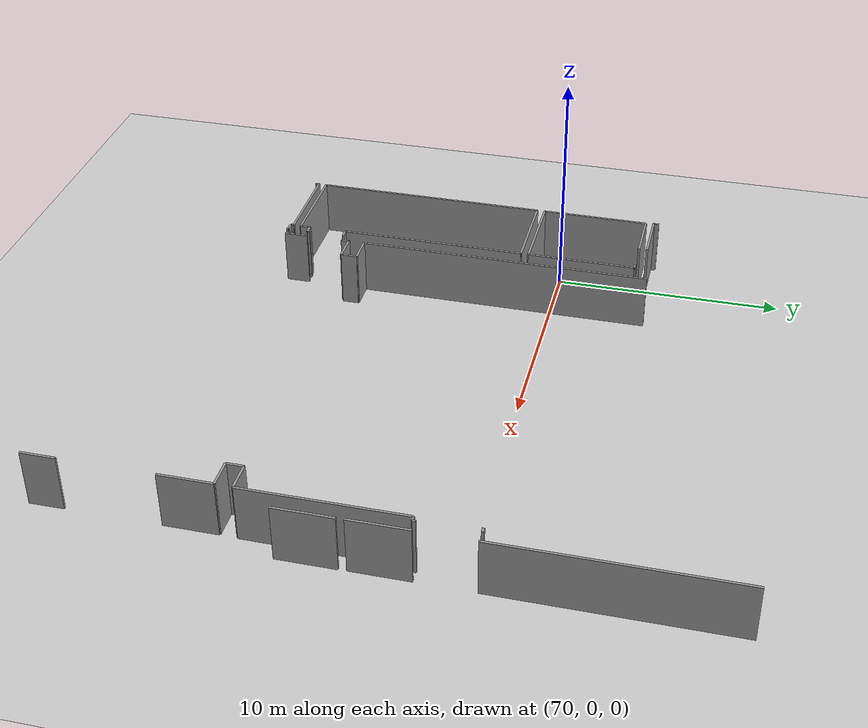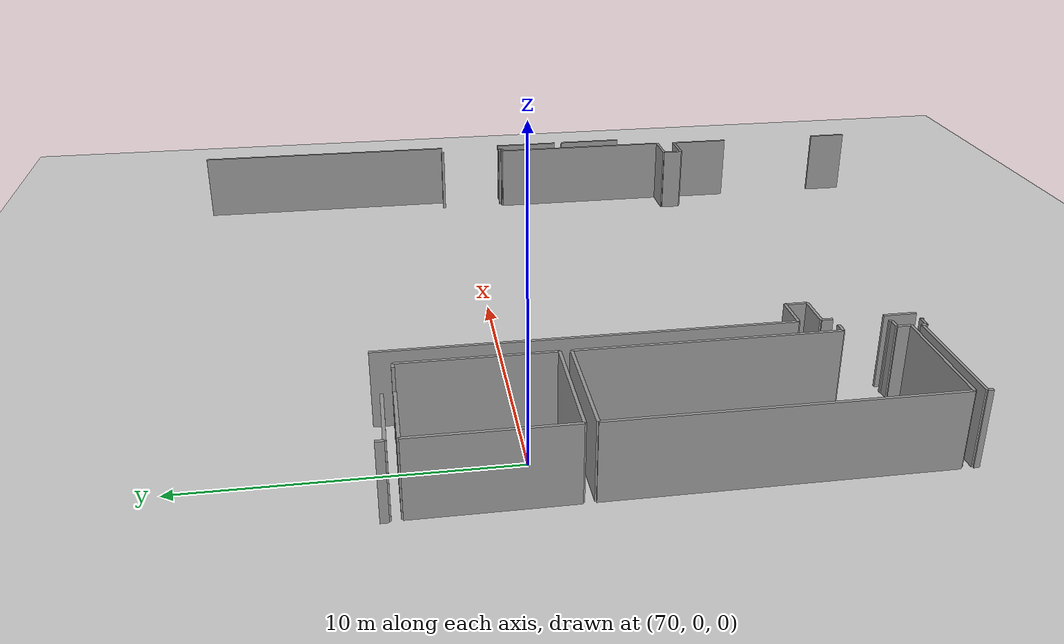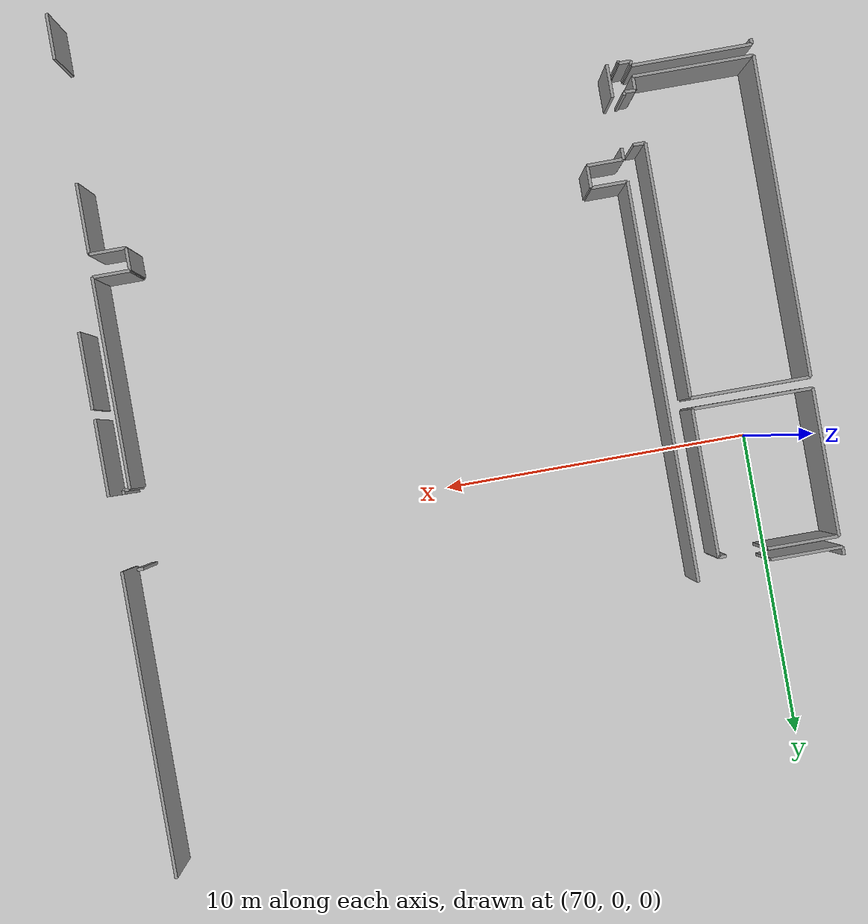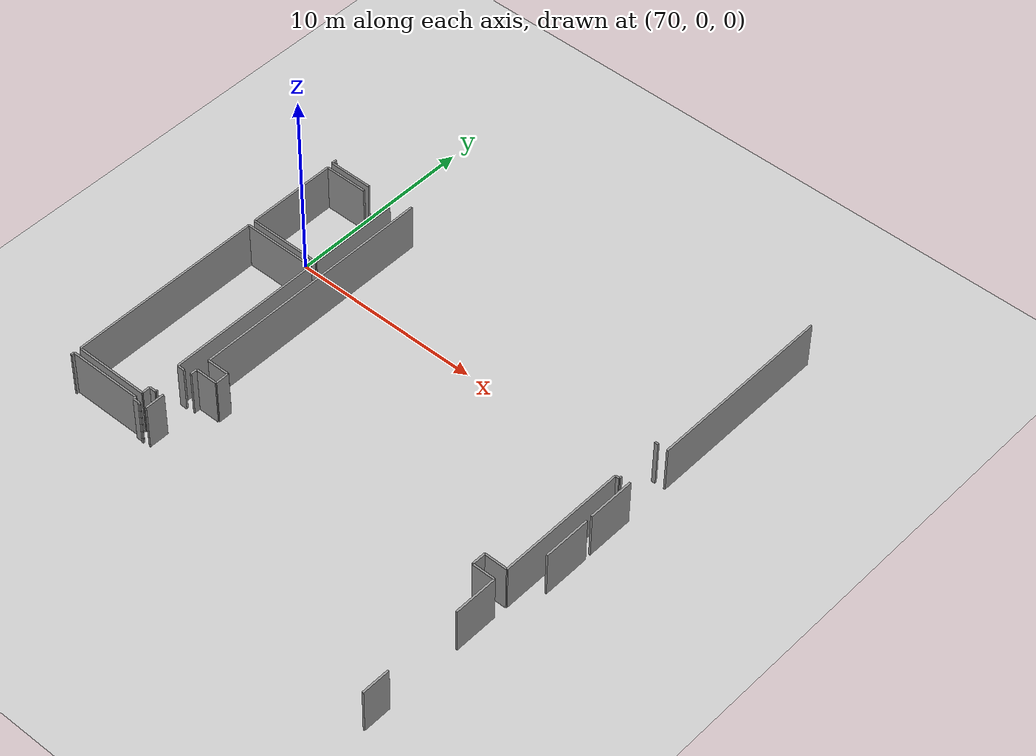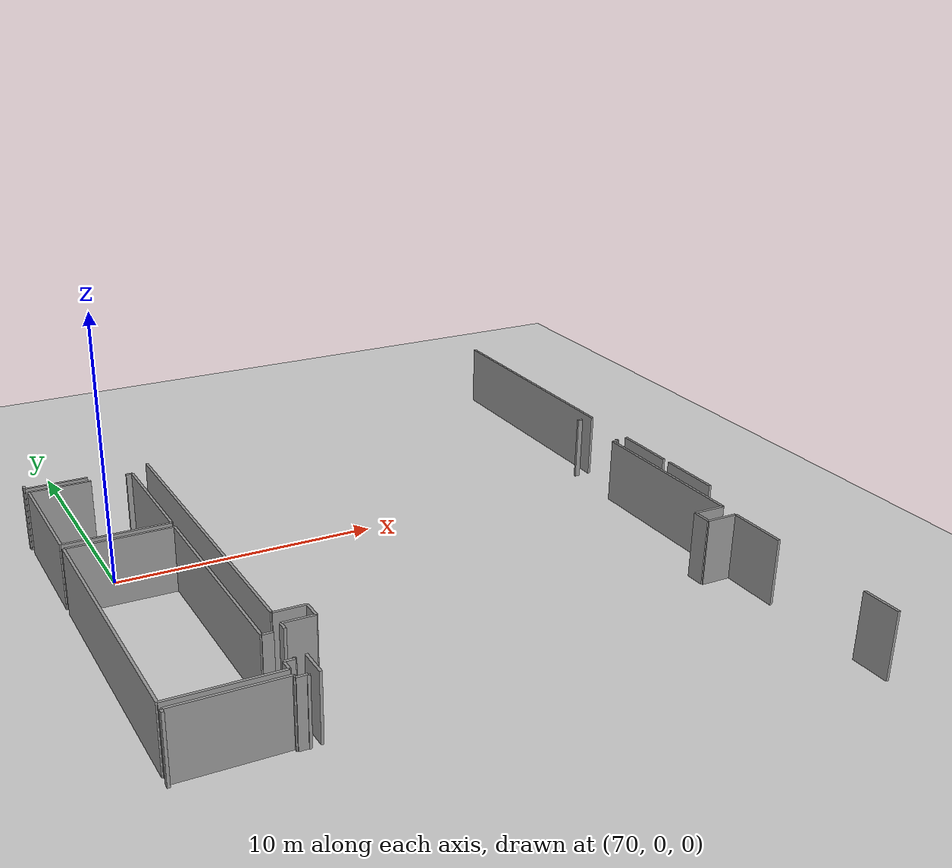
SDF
<sdf version="1.6">
 <world name="default">
  <model name="ground_plane">
   <static>1</static>
   <link name="link">
    <collision name="collision">
     <geometry><plane><normal>0 0 1</normal><size>100 100</size></plane></geometry>
     <surface><friction><ode><mu>100</mu><mu2>50</mu2></ode></friction></surface>
    </collision>
    <visual name="visual">
     <cast_shadows>0</cast_shadows>
     <geometry><plane><normal>0 0 1</normal><size>100 100</size></plane></geometry>
     <material>
      <script><uri>file://media/materials/scripts/gazebo.material</uri><name>Gazebo/Grey</name></script>
     </material>
    </visual>
   </link>
  </model>
  <model name="0510035519_A_40_1_102">
   <static>1</static>
   <link name="Wall_752">
    <collision name="Wall_752_Collision">
     <geometry><box><size>2.31211081459 0.1 2.5</size></box></geometry>
     <pose>1.15605540729 0 1.25 0 0 0</pose>
    </collision>
    <visual name="Wall_752_Visual">
     <pose>1.15605540729 0 1.25 0 0 0</pose>
     <geometry><box><size>2.31211081459 0.1 2.5</size></box></geometry>
     <material>
      <script><uri>file://media/materials/scripts/gazebo.material</uri><name>Gazebo/Grey</name></script>
      <ambient>1 1 1 1</ambient>
     </material>
    </visual>
    <pose>186.885754225 -64.7701105604 0 0 0 3.14159265359</pose>
   </link>
   <link name="Wall_753">
    <collision name="Wall_753_Collision">
     <geometry><box><size>0.252636929724 0.1 2.5</size></box></geometry>
     <pose>0.126318464862 0 1.25 0 0 0</pose>
    </collision>
    <visual name="Wall_753_Visual">
     <pose>0.126318464862 0 1.25 0 0 0</pose>
     <geometry><box><size>0.252636929724 0.1 2.5</size></box></geometry>
     <material>
      <script><uri>file://media/materials/scripts/gazebo.material</uri><name>Gazebo/Grey</name></script>
      <ambient>1 1 1 1</ambient>
     </material>
    </visual>
    <pose>184.573643411 -64.7701105604 0 0 0 1.57079632679</pose>
   </link>
   <link name="Wall_917">
    <collision name="Wall_917_Collision">
     <geometry><box><size>4.76629813191 0.1 2.5</size></box></geometry>
     <pose>2.38314906596 0 1.25 0 0 0</pose>
    </collision>
    <visual name="Wall_917_Visual">
     <pose>2.38314906596 0 1.25 0 0 0</pose>
     <geometry><box><size>4.76629813191 0.1 2.5</size></box></geometry>
     <material>
      <script><uri>file://media/materials/scripts/gazebo.material</uri><name>Gazebo/Grey</name></script>
      <ambient>1 1 1 1</ambient>
     </material>
    </visual>
    <pose>184.624475791 -69.894522811 0 0 0 1.57079632679</pose>
   </link>
   <link name="Wall_918">
    <collision name="Wall_918_Collision">
     <geometry><box><size>2.29686110052 0.1 2.5</size></box></geometry>
     <pose>1.14843055026 0 1.25 0 0 0</pose>
    </collision>
    <visual name="Wall_918_Visual">
     <pose>1.14843055026 0 1.25 0 0 0</pose>
     <geometry><box><size>2.29686110052 0.1 2.5</size></box></geometry>
     <material>
      <script><uri>file://media/materials/scripts/gazebo.material</uri><name>Gazebo/Grey</name></script>
      <ambient>1 1 1 1</ambient>
     </material>
    </visual>
    <pose>184.624475791 -65.1282246791 0 0 0 0.0</pose>
   </link>
   <link name="Wall_919">
    <collision name="Wall_919_Collision">
     <geometry><box><size>0.247807853603 0.1 2.5</size></box></geometry>
     <pose>0.123903926801 0 1.25 0 0 0</pose>
    </collision>
    <visual name="Wall_919_Visual">
     <pose>0.123903926801 0 1.25 0 0 0</pose>
     <geometry><box><size>0.247807853603 0.1 2.5</size></box></geometry>
     <material>
      <script><uri>file://media/materials/scripts/gazebo.material</uri><name>Gazebo/Grey</name></script>
      <ambient>1 1 1 1</ambient>
     </material>
    </visual>
    <pose>188.257466006 -65.1282246791 0 0 0 0.0</pose>
   </link>
   <link name="Wall_920">
    <collision name="Wall_920_Collision">
     <geometry><box><size>4.78281865548 0.1 2.5</size></box></geometry>
     <pose>2.39140932774 0 1.25 0 0 0</pose>
    </collision>
    <visual name="Wall_920_Visual">
     <pose>2.39140932774 0 1.25 0 0 0</pose>
     <geometry><box><size>4.78281865548 0.1 2.5</size></box></geometry>
     <material>
      <script><uri>file://media/materials/scripts/gazebo.material</uri><name>Gazebo/Grey</name></script>
      <ambient>1 1 1 1</ambient>
     </material>
    </visual>
    <pose>188.505273859 -65.1282246791 0 0 0 -1.57079632679</pose>
   </link>
   <link name="Wall_921">
    <collision name="Wall_921_Collision">
     <geometry><box><size>3.88083323207 0.1 2.5</size></box></geometry>
     <pose>1.94041661604 0 1.25 0 0 0</pose>
    </collision>
    <visual name="Wall_921_Visual">
     <pose>1.94041661604 0 1.25 0 0 0</pose>
     <geometry><box><size>3.88083323207 0.1 2.5</size></box></geometry>
     <material>
      <script><uri>file://media/materials/scripts/gazebo.material</uri><name>Gazebo/Grey</name></script>
      <ambient>1 1 1 1</ambient>
     </material>
    </visual>
    <pose>188.505273859 -69.9110433346 0 0 0 3.13733568802</pose>
   </link>
   <link name="Wall_926">
    <collision name="Wall_926_Collision">
     <geometry><box><size>0.202058711399 0.1 2.5</size></box></geometry>
     <pose>0.1010293557 0 1.25 0 0 0</pose>
    </collision>
    <visual name="Wall_926_Visual">
     <pose>0.1010293557 0 1.25 0 0 0</pose>
     <geometry><box><size>0.202058711399 0.1 2.5</size></box></geometry>
     <material>
      <script><uri>file://media/materials/scripts/gazebo.material</uri><name>Gazebo/Grey</name></script>
      <ambient>1 1 1 1</ambient>
     </material>
    </visual>
    <pose>206.542635659 -67.9616215529 0 0 0 0.0</pose>
   </link>
   <link name="Wall_927">
    <collision name="Wall_927_Collision">
     <geometry><box><size>0.133943321896 0.1 2.5</size></box></geometry>
     <pose>0.066971660948 0 1.25 0 0 0</pose>
    </collision>
    <visual name="Wall_927_Visual">
     <pose>0.066971660948 0 1.25 0 0 0</pose>
     <geometry><box><size>0.133943321896 0.1 2.5</size></box></geometry>
     <material>
      <script><uri>file://media/materials/scripts/gazebo.material</uri><name>Gazebo/Grey</name></script>
      <ambient>1 1 1 1</ambient>
     </material>
    </visual>
    <pose>206.74469437 -70.3883593849 0 0 0 -1.57079632679</pose>
   </link>
   <link name="Wall_928">
    <collision name="Wall_928_Collision">
     <geometry><box><size>0.21349599695 0.1 2.5</size></box></geometry>
     <pose>0.106747998475 0 1.25 0 0 0</pose>
    </collision>
    <visual name="Wall_928_Visual">
     <pose>0.106747998475 0 1.25 0 0 0</pose>
     <geometry><box><size>0.21349599695 0.1 2.5</size></box></geometry>
     <material>
      <script><uri>file://media/materials/scripts/gazebo.material</uri><name>Gazebo/Grey</name></script>
      <ambient>1 1 1 1</ambient>
     </material>
    </visual>
    <pose>206.74469437 -70.5223027068 0 0 0 3.14159265359</pose>
   </link>
   <link name="Wall_929">
    <collision name="Wall_929_Collision">
     <geometry><box><size>6.82907612149 0.1 2.5</size></box></geometry>
     <pose>3.41453806074 0 1.25 0 0 0</pose>
    </collision>
    <visual name="Wall_929_Visual">
     <pose>3.41453806074 0 1.25 0 0 0</pose>
     <geometry><box><size>6.82907612149 0.1 2.5</size></box></geometry>
     <material>
      <script><uri>file://media/materials/scripts/gazebo.material</uri><name>Gazebo/Grey</name></script>
      <ambient>1 1 1 1</ambient>
     </material>
    </visual>
    <pose>206.531198373 -70.5223027068 0 0 0 -1.57079632679</pose>
   </link>
   <link name="Wall_930">
    <collision name="Wall_930_Collision">
     <geometry><box><size>1.21692718262 0.1 2.5</size></box></geometry>
     <pose>0.608463591308 0 1.25 0 0 0</pose>
    </collision>
    <visual name="Wall_930_Visual">
     <pose>0.608463591308 0 1.25 0 0 0</pose>
     <geometry><box><size>1.21692718262 0.1 2.5</size></box></geometry>
     <material>
      <script><uri>file://media/materials/scripts/gazebo.material</uri><name>Gazebo/Grey</name></script>
      <ambient>1 1 1 1</ambient>
     </material>
    </visual>
    <pose>206.531198373 -77.3513788283 0 0 0 3.14159265359</pose>
   </link>
   <link name="Wall_931">
    <collision name="Wall_931_Collision">
     <geometry><box><size>0.734273732368 0.1 2.5</size></box></geometry>
     <pose>0.367136866184 0 1.25 0 0 0</pose>
    </collision>
    <visual name="Wall_931_Visual">
     <pose>0.367136866184 0 1.25 0 0 0</pose>
     <geometry><box><size>0.734273732368 0.1 2.5</size></box></geometry>
     <material>
      <script><uri>file://media/materials/scripts/gazebo.material</uri><name>Gazebo/Grey</name></script>
      <ambient>1 1 1 1</ambient>
     </material>
    </visual>
    <pose>205.314271191 -77.3513788283 0 0 0 -1.57079632679</pose>
   </link>
   <link name="Wall_932">
    <collision name="Wall_932_Collision">
     <geometry><box><size>1.18693607828 0.1 2.5</size></box></geometry>
     <pose>0.593468039141 0 1.25 0 0 0</pose>
    </collision>
    <visual name="Wall_932_Visual">
     <pose>0.593468039141 0 1.25 0 0 0</pose>
     <geometry><box><size>1.18693607828 0.1 2.5</size></box></geometry>
     <material>
      <script><uri>file://media/materials/scripts/gazebo.material</uri><name>Gazebo/Grey</name></script>
      <ambient>1 1 1 1</ambient>
     </material>
    </visual>
    <pose>205.314271191 -78.0856525607 0 0 0 0.0</pose>
   </link>
   <link name="Wall_933">
    <collision name="Wall_933_Collision">
     <geometry><box><size>2.2917778625 0.1 2.5</size></box></geometry>
     <pose>1.14588893125 0 1.25 0 0 0</pose>
    </collision>
    <visual name="Wall_933_Visual">
     <pose>1.14588893125 0 1.25 0 0 0</pose>
     <geometry><box><size>2.2917778625 0.1 2.5</size></box></geometry>
     <material>
      <script><uri>file://media/materials/scripts/gazebo.material</uri><name>Gazebo/Grey</name></script>
      <ambient>1 1 1 1</ambient>
     </material>
    </visual>
    <pose>206.501207269 -78.0856525607 0 0 0 -1.57079632679</pose>
   </link>
   <link name="Wall_934">
    <collision name="Wall_934_Collision">
     <geometry><box><size>1.47642648367 0.1 2.5</size></box></geometry>
     <pose>0.738213241835 0 1.25 0 0 0</pose>
    </collision>
    <visual name="Wall_934_Visual">
     <pose>0.738213241835 0 1.25 0 0 0</pose>
     <geometry><box><size>1.47642648367 0.1 2.5</size></box></geometry>
     <material>
      <script><uri>file://media/materials/scripts/gazebo.material</uri><name>Gazebo/Grey</name></script>
      <ambient>1 1 1 1</ambient>
     </material>
    </visual>
    <pose>206.501207269 -84.3751429661 0 0 0 -1.57079632679</pose>
   </link>
   <link name="Wall_937">
    <collision name="Wall_937_Collision">
     <geometry><box><size>1.05324691829 0.1 2.5</size></box></geometry>
     <pose>0.526623459143 0 1.25 0 0 0</pose>
    </collision>
    <visual name="Wall_937_Visual">
     <pose>0.526623459143 0 1.25 0 0 0</pose>
     <geometry><box><size>1.05324691829 0.1 2.5</size></box></geometry>
     <material>
      <script><uri>file://media/materials/scripts/gazebo.material</uri><name>Gazebo/Grey</name></script>
      <ambient>1 1 1 1</ambient>
     </material>
    </visual>
    <pose>189.27004702 -81.1419494218 0 0 0 1.57079632679</pose>
   </link>
   <link name="Wall_938">
    <collision name="Wall_938_Collision">
     <geometry><box><size>0.358114118694 0.1 2.5</size></box></geometry>
     <pose>0.179057059347 0 1.25 0 0 0</pose>
    </collision>
    <visual name="Wall_938_Visual">
     <pose>0.179057059347 0 1.25 0 0 0</pose>
     <geometry><box><size>0.358114118694 0.1 2.5</size></box></geometry>
     <material>
      <script><uri>file://media/materials/scripts/gazebo.material</uri><name>Gazebo/Grey</name></script>
      <ambient>1 1 1 1</ambient>
     </material>
    </visual>
    <pose>189.27004702 -78.4569830982 0 0 0 1.57079632679</pose>
   </link>
   <link name="Wall_939">
    <collision name="Wall_939_Collision">
     <geometry><box><size>1.17346549752 0.1 2.5</size></box></geometry>
     <pose>0.586732748761 0 1.25 0 0 0</pose>
    </collision>
    <visual name="Wall_939_Visual">
     <pose>0.586732748761 0 1.25 0 0 0</pose>
     <geometry><box><size>1.17346549752 0.1 2.5</size></box></geometry>
     <material>
      <script><uri>file://media/materials/scripts/gazebo.material</uri><name>Gazebo/Grey</name></script>
      <ambient>1 1 1 1</ambient>
     </material>
    </visual>
    <pose>189.27004702 -78.0988689795 0 0 0 0.0</pose>
   </link>
   <link name="Wall_940">
    <collision name="Wall_940_Collision">
     <geometry><box><size>0.721057313509 0.1 2.5</size></box></geometry>
     <pose>0.360528656754 0 1.25 0 0 0</pose>
    </collision>
    <visual name="Wall_940_Visual">
     <pose>0.360528656754 0 1.25 0 0 0</pose>
     <geometry><box><size>0.721057313509 0.1 2.5</size></box></geometry>
     <material>
      <script><uri>file://media/materials/scripts/gazebo.material</uri><name>Gazebo/Grey</name></script>
      <ambient>1 1 1 1</ambient>
     </material>
    </visual>
    <pose>190.443512517 -78.0988689795 0 0 0 1.57079632679</pose>
   </link>
   <link name="Wall_941">
    <collision name="Wall_941_Collision">
     <geometry><box><size>1.17346549752 0.1 2.5</size></box></geometry>
     <pose>0.586732748761 0 1.25 0 0 0</pose>
    </collision>
    <visual name="Wall_941_Visual">
     <pose>0.586732748761 0 1.25 0 0 0</pose>
     <geometry><box><size>1.17346549752 0.1 2.5</size></box></geometry>
     <material>
      <script><uri>file://media/materials/scripts/gazebo.material</uri><name>Gazebo/Grey</name></script>
      <ambient>1 1 1 1</ambient>
     </material>
    </visual>
    <pose>190.443512517 -77.377811666 0 0 0 3.14159265359</pose>
   </link>
   <link name="Wall_942">
    <collision name="Wall_942_Collision">
     <geometry><box><size>12.9134578727 0.1 2.5</size></box></geometry>
     <pose>6.45672893633 0 1.25 0 0 0</pose>
    </collision>
    <visual name="Wall_942_Visual">
     <pose>6.45672893633 0 1.25 0 0 0</pose>
     <geometry><box><size>12.9134578727 0.1 2.5</size></box></geometry>
     <material>
      <script><uri>file://media/materials/scripts/gazebo.material</uri><name>Gazebo/Grey</name></script>
      <ambient>1 1 1 1</ambient>
     </material>
    </visual>
    <pose>189.27004702 -77.377811666 0 0 0 1.57079632679</pose>
   </link>
   <link name="Wall_944">
    <collision name="Wall_944_Collision">
     <geometry><box><size>10.3659931376 0.1 2.5</size></box></geometry>
     <pose>5.18299656881 0 1.25 0 0 0</pose>
    </collision>
    <visual name="Wall_944_Visual">
     <pose>5.18299656881 0 1.25 0 0 0</pose>
     <geometry><box><size>10.3659931376 0.1 2.5</size></box></geometry>
     <material>
      <script><uri>file://media/materials/scripts/gazebo.material</uri><name>Gazebo/Grey</name></script>
      <ambient>1 1 1 1</ambient>
     </material>
    </visual>
    <pose>184.632100648 -80.6244757911 0 0 0 1.57079632679</pose>
   </link>
   <link name="Wall_945">
    <collision name="Wall_945_Collision">
     <geometry><box><size>3.86859829712 0.1 2.5</size></box></geometry>
     <pose>1.93429914856 0 1.25 0 0 0</pose>
    </collision>
    <visual name="Wall_945_Visual">
     <pose>1.93429914856 0 1.25 0 0 0</pose>
     <geometry><box><size>3.86859829712 0.1 2.5</size></box></geometry>
     <material>
      <script><uri>file://media/materials/scripts/gazebo.material</uri><name>Gazebo/Grey</name></script>
      <ambient>1 1 1 1</ambient>
     </material>
    </visual>
    <pose>184.632100648 -70.2584826535 0 0 0 0.0</pose>
   </link>
   <link name="Wall_946">
    <collision name="Wall_946_Collision">
     <geometry><box><size>8.23027068242 0.1 2.5</size></box></geometry>
     <pose>4.11513534121 0 1.25 0 0 0</pose>
    </collision>
    <visual name="Wall_946_Visual">
     <pose>4.11513534121 0 1.25 0 0 0</pose>
     <geometry><box><size>8.23027068242 0.1 2.5</size></box></geometry>
     <material>
      <script><uri>file://media/materials/scripts/gazebo.material</uri><name>Gazebo/Grey</name></script>
      <ambient>1 1 1 1</ambient>
     </material>
    </visual>
    <pose>188.500698945 -70.2584826535 0 0 0 -1.57079632679</pose>
   </link>
   <link name="Wall_947">
    <collision name="Wall_947_Collision">
     <geometry><box><size>0.384546956411 0.1 2.5</size></box></geometry>
     <pose>0.192273478206 0 1.25 0 0 0</pose>
    </collision>
    <visual name="Wall_947_Visual">
     <pose>0.192273478206 0 1.25 0 0 0</pose>
     <geometry><box><size>0.384546956411 0.1 2.5</size></box></geometry>
     <material>
      <script><uri>file://media/materials/scripts/gazebo.material</uri><name>Gazebo/Grey</name></script>
      <ambient>1 1 1 1</ambient>
     </material>
    </visual>
    <pose>188.500698945 -78.4887533359 0 0 0 0.0</pose>
   </link>
   <link name="Wall_948">
    <collision name="Wall_948_Collision">
     <geometry><box><size>0.0937857415173 0.1 2.5</size></box></geometry>
     <pose>0.0468928707587 0 1.25 0 0 0</pose>
    </collision>
    <visual name="Wall_948_Visual">
     <pose>0.0468928707587 0 1.25 0 0 0</pose>
     <geometry><box><size>0.0937857415173 0.1 2.5</size></box></geometry>
     <material>
      <script><uri>file://media/materials/scripts/gazebo.material</uri><name>Gazebo/Grey</name></script>
      <ambient>1 1 1 1</ambient>
     </material>
    </visual>
    <pose>188.885245902 -80.0942940653 0 0 0 -1.57079632679</pose>
   </link>
   <link name="Wall_949">
    <collision name="Wall_949_Collision">
     <geometry><box><size>0.359384928199 0.1 2.5</size></box></geometry>
     <pose>0.1796924641 0 1.25 0 0 0</pose>
    </collision>
    <visual name="Wall_949_Visual">
     <pose>0.1796924641 0 1.25 0 0 0</pose>
     <geometry><box><size>0.359384928199 0.1 2.5</size></box></geometry>
     <material>
      <script><uri>file://media/materials/scripts/gazebo.material</uri><name>Gazebo/Grey</name></script>
      <ambient>1 1 1 1</ambient>
     </material>
    </visual>
    <pose>188.885245902 -80.1880798068 0 0 0 3.14159265359</pose>
   </link>
   <link name="Wall_950">
    <collision name="Wall_950_Collision">
     <geometry><box><size>0.448087431694 0.1 2.5</size></box></geometry>
     <pose>0.224043715847 0 1.25 0 0 0</pose>
    </collision>
    <visual name="Wall_950_Visual">
     <pose>0.224043715847 0 1.25 0 0 0</pose>
     <geometry><box><size>0.448087431694 0.1 2.5</size></box></geometry>
     <material>
      <script><uri>file://media/materials/scripts/gazebo.material</uri><name>Gazebo/Grey</name></script>
      <ambient>1 1 1 1</ambient>
     </material>
    </visual>
    <pose>188.525860973 -80.1880798068 0 0 0 -1.57079632679</pose>
   </link>
   <link name="Wall_951">
    <collision name="Wall_951_Collision">
     <geometry><box><size>3.89377787772 0.1 2.5</size></box></geometry>
     <pose>1.94688893886 0 1.25 0 0 0</pose>
    </collision>
    <visual name="Wall_951_Visual">
     <pose>1.94688893886 0 1.25 0 0 0</pose>
     <geometry><box><size>3.89377787772 0.1 2.5</size></box></geometry>
     <material>
      <script><uri>file://media/materials/scripts/gazebo.material</uri><name>Gazebo/Grey</name></script>
      <ambient>1 1 1 1</ambient>
     </material>
    </visual>
    <pose>188.525860973 -80.6361672385 0 0 0 3.13859005165</pose>
   </link>
   <link name="Wall_953">
    <collision name="Wall_953_Collision">
     <geometry><box><size>0.176896683187 0.1 2.5</size></box></geometry>
     <pose>0.0884483415936 0 1.25 0 0 0</pose>
    </collision>
    <visual name="Wall_953_Visual">
     <pose>0.0884483415936 0 1.25 0 0 0</pose>
     <geometry><box><size>0.176896683187 0.1 2.5</size></box></geometry>
     <material>
      <script><uri>file://media/materials/scripts/gazebo.material</uri><name>Gazebo/Grey</name></script>
      <ambient>1 1 1 1</ambient>
     </material>
    </visual>
    <pose>184.62295082 -81.1587241073 0 0 0 1.57079632679</pose>
   </link>
   <link name="Wall_954">
    <collision name="Wall_954_Collision">
     <geometry><box><size>3.88028974457 0.1 2.5</size></box></geometry>
     <pose>1.94014487228 0 1.25 0 0 0</pose>
    </collision>
    <visual name="Wall_954_Visual">
     <pose>1.94014487228 0 1.25 0 0 0</pose>
     <geometry><box><size>3.88028974457 0.1 2.5</size></box></geometry>
     <material>
      <script><uri>file://media/materials/scripts/gazebo.material</uri><name>Gazebo/Grey</name></script>
      <ambient>1 1 1 1</ambient>
     </material>
    </visual>
    <pose>184.62295082 -80.9818274241 0 0 0 0.0</pose>
   </link>
   <link name="Wall_955">
    <collision name="Wall_955_Collision">
     <geometry><box><size>0.13928072182 0.1 2.5</size></box></geometry>
     <pose>0.0696403609099 0 1.25 0 0 0</pose>
    </collision>
    <visual name="Wall_955_Visual">
     <pose>0.0696403609099 0 1.25 0 0 0</pose>
     <geometry><box><size>0.13928072182 0.1 2.5</size></box></geometry>
     <material>
      <script><uri>file://media/materials/scripts/gazebo.material</uri><name>Gazebo/Grey</name></script>
      <ambient>1 1 1 1</ambient>
     </material>
    </visual>
    <pose>188.503240564 -80.9818274241 0 0 0 -1.57079632679</pose>
   </link>
   <link name="Wall_956">
    <collision name="Wall_956_Collision">
     <geometry><box><size>0.382513661202 0.1 2.5</size></box></geometry>
     <pose>0.191256830601 0 1.25 0 0 0</pose>
    </collision>
    <visual name="Wall_956_Visual">
     <pose>0.191256830601 0 1.25 0 0 0</pose>
     <geometry><box><size>0.382513661202 0.1 2.5</size></box></geometry>
     <material>
      <script><uri>file://media/materials/scripts/gazebo.material</uri><name>Gazebo/Grey</name></script>
      <ambient>1 1 1 1</ambient>
     </material>
    </visual>
    <pose>188.503240564 -81.1211081459 0 0 0 0.0</pose>
   </link>
   <link name="Wall_957">
    <collision name="Wall_957_Collision">
     <geometry><box><size>0.0765027322404 0.1 2.5</size></box></geometry>
     <pose>0.0382513661202 0 1.25 0 0 0</pose>
    </collision>
    <visual name="Wall_957_Visual">
     <pose>0.0382513661202 0 1.25 0 0 0</pose>
     <geometry><box><size>0.0765027322404 0.1 2.5</size></box></geometry>
     <material>
      <script><uri>file://media/materials/scripts/gazebo.material</uri><name>Gazebo/Grey</name></script>
      <ambient>1 1 1 1</ambient>
     </material>
    </visual>
    <pose>188.885754225 -81.1211081459 0 0 0 -1.57079632679</pose>
   </link>
   <link name="Wall_1113">
    <collision name="Wall_1113_Collision">
     <geometry><box><size>2.49942813572 0.1 2.5</size></box></geometry>
     <pose>1.24971406786 0 1.25 0 0 0</pose>
    </collision>
    <visual name="Wall_1113_Visual">
     <pose>1.24971406786 0 1.25 0 0 0</pose>
     <geometry><box><size>2.49942813572 0.1 2.5</size></box></geometry>
     <material>
      <script><uri>file://media/materials/scripts/gazebo.material</uri><name>Gazebo/Grey</name></script>
      <ambient>1 1 1 1</ambient>
     </material>
    </visual>
    <pose>207.235226839 -72.8982081586 0 0 0 1.57079632679</pose>
   </link>
   <link name="Wall_1114">
    <collision name="Wall_1114_Collision">
     <geometry><box><size>9.88944051689 0.1 2.5</size></box></geometry>
     <pose>4.94472025844 0 1.25 0 0 0</pose>
    </collision>
    <visual name="Wall_1114_Visual">
     <pose>4.94472025844 0 1.25 0 0 0</pose>
     <geometry><box><size>9.88944051689 0.1 2.5</size></box></geometry>
     <material>
      <script><uri>file://media/materials/scripts/gazebo.material</uri><name>Gazebo/Grey</name></script>
      <ambient>1 1 1 1</ambient>
     </material>
    </visual>
    <pose>207.235226839 -67.9839878002 0 0 0 1.57123323245</pose>
   </link>
   <link name="Wall_1175">
    <collision name="Wall_1175_Collision">
     <geometry><box><size>2.50222391663 0.1 2.5</size></box></geometry>
     <pose>1.25111195832 0 1.25 0 0 0</pose>
    </collision>
    <visual name="Wall_1175_Visual">
     <pose>1.25111195832 0 1.25 0 0 0</pose>
     <geometry><box><size>2.50222391663 0.1 2.5</size></box></geometry>
     <material>
      <script><uri>file://media/materials/scripts/gazebo.material</uri><name>Gazebo/Grey</name></script>
      <ambient>1 1 1 1</ambient>
     </material>
    </visual>
    <pose>207.252509849 -75.7127970517 0 0 0 1.57079632679</pose>
   </link>
   <pose>-116.6 68.721527513 0 0 0 0</pose>
  </model>
 </world>
</sdf>
